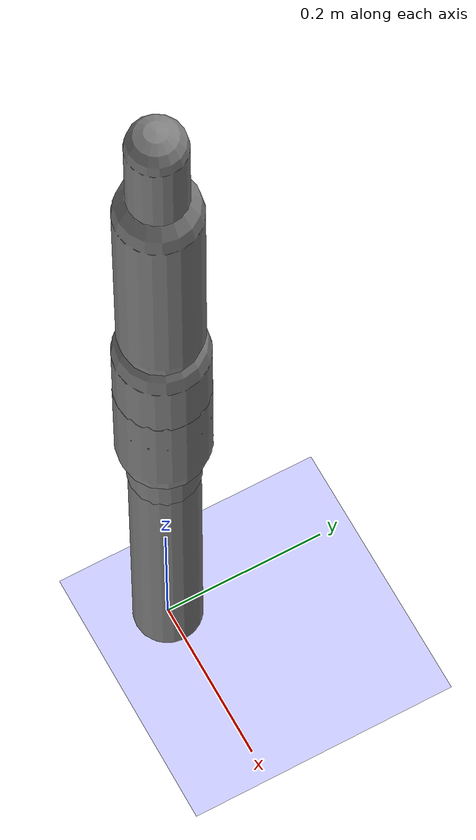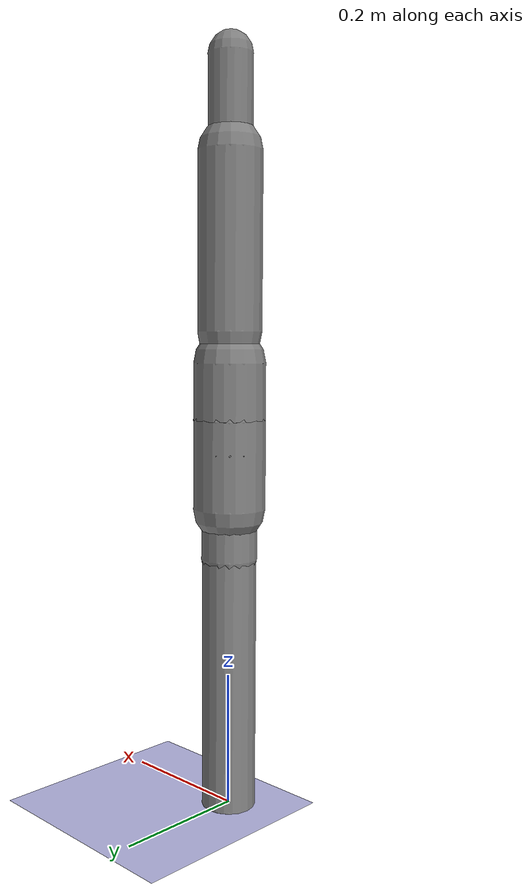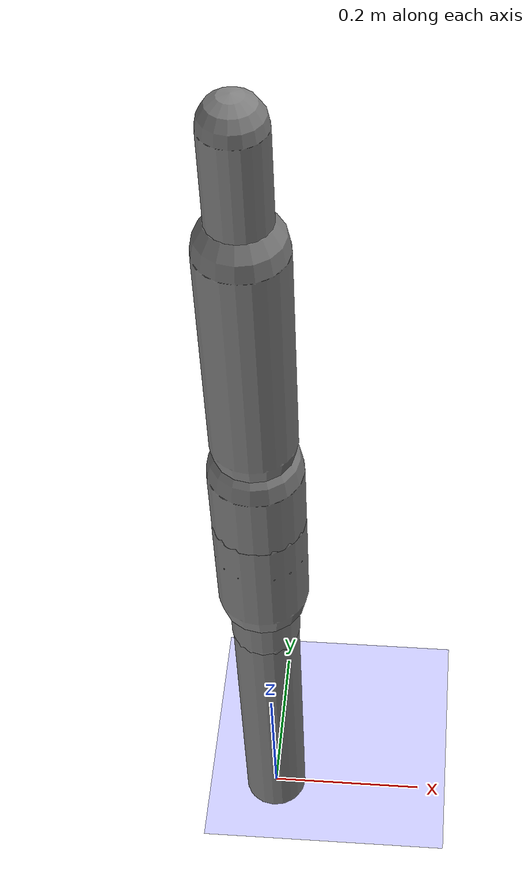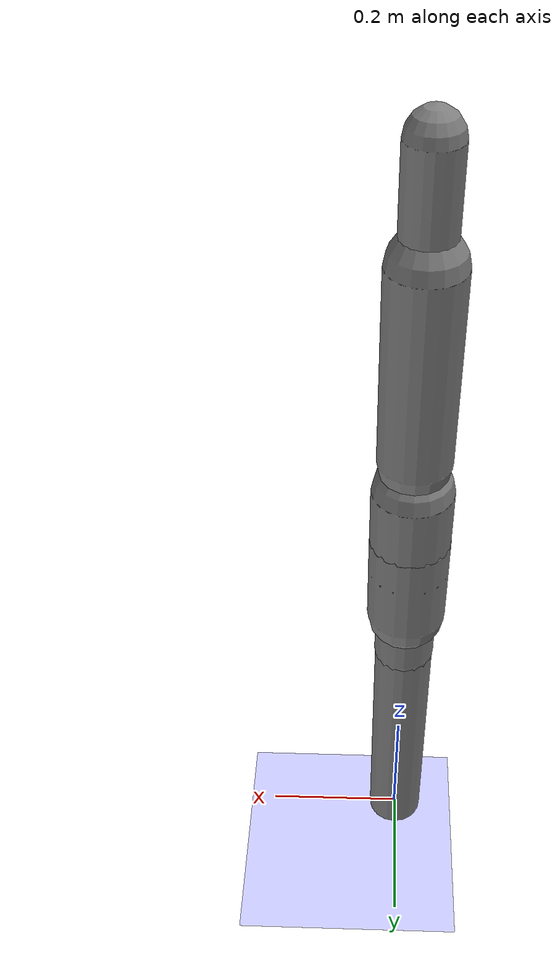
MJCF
<?xml version='1.0' encoding='UTF-8'?>
<mujoco model="robot_model">
  <worldbody>
    <light name="light" pos="0 -3 10" dir="0 0.5 -1" diffuse=".8 .8 .8" specular="0.1 0.1 0.1"/>
    <geom name="floor" type="plane" size="10.0 10.0 0.1" pos="0 0 0" rgba="0.8 0.8 1 1" contype="2" conaffinity="1"/>
    <body name="limb0" pos="0 0 0">
      <geom type="capsule" fromto="0 0 0 0 0 0.48450893437579834" size="0.04072697552709942" density="1046.9075004712781" contype="1" conaffinity="2"/>
      <site type="sphere" size="0.01" name="limb0_site0" pos="0 0 0.2795169073995135"/>
      <site type="sphere" size="0.01" name="limb0_site1" pos="0 0 0.45626504591091505"/>
      <freejoint name="limb0_root"/>
      <body name="limb1" pos="0 0 0.2795169073995135">
        <geom type="capsule" fromto="0 0 0 0 0 0.2639757366326131" size="0.03303782304059255" density="616.6153958948047" contype="1" conaffinity="2"/>
        <site type="sphere" size="0.01" name="limb1_site0" pos="0 0 0.16469519644951955"/>
        <site type="sphere" size="0.01" name="limb1_site1" pos="0 0 0.10105994540977413"/>
        <site type="sphere" size="0.01" name="limb1_site2" pos="0 0 0.22399130455694416"/>
        <body name="limb2" pos="0 0 0.16469519644951955">
          <geom type="capsule" fromto="0 0 0 0 0 0.22354186753596794" size="0.040072789194709066" density="671.9681923039791" contype="1" conaffinity="2"/>
          <site type="sphere" size="0.01" name="limb2_site0" pos="0 0 0.09613948125786533"/>
          <body name="limb3" pos="0 0 0.09613948125786533">
            <geom type="capsule" fromto="0 0 0 0 0 0.1320734913801986" size="0.05340957392047939" density="1133.4821049602715" contype="1" conaffinity="2"/>
            <joint name="joint_limb2_limb3_0" type="hinge" axis="0 1 0" range="-69.44632972357735 69.44632972357735" damping="5.0"/>
          </body>
          <joint name="joint_limb1_limb2_0" type="hinge" axis="0 1 0" range="-79.19027832141104 79.19027832141104" damping="5.0"/>
        </body>
        <body name="limb4" pos="0 0 0.10105994540977413">
          <geom type="capsule" fromto="0 0 0 0 0 0.3449366956007403" size="0.04182995516077146" density="888.638751137447" contype="1" conaffinity="2"/>
          <site type="sphere" size="0.01" name="limb4_site0" pos="0 0 0.34476469369601037"/>
          <site type="sphere" size="0.01" name="limb4_site1" pos="0 0 0.197693734804722"/>
          <body name="limb5" pos="0 0 0.34476469369601037">
            <geom type="capsule" fromto="0 0 0 0 0 0.38689637571819735" size="0.03296585503229504" density="787.6117064878987" contype="1" conaffinity="2"/>
            <joint name="joint_limb4_limb5_0" type="hinge" axis="0 1 0" range="-97.60316524447805 97.60316524447805" damping="5.0"/>
          </body>
          <body name="limb6" pos="0 0 0.197693734804722">
            <geom type="capsule" fromto="0 0 0 0 0 0.1209611644315948" size="0.020475413601167402" density="418.52899181852035" contype="1" conaffinity="2"/>
            <joint name="joint_limb4_limb6_0" type="hinge" axis="0 1 0" range="-98.74425114599552 98.74425114599552" damping="5.0"/>
          </body>
          <joint name="joint_limb1_limb4_0" type="hinge" axis="0 1 0" range="-81.36051586401729 81.36051586401729" damping="5.0"/>
        </body>
        <body name="limb7" pos="0 0 0.22399130455694416">
          <geom type="capsule" fromto="0 0 0 0 0 0.4886525017141072" size="0.02730849030649112" density="1118.1587480940386" contype="1" conaffinity="2"/>
          <site type="sphere" size="0.01" name="limb7_site0" pos="0 0 0.2148602362279738"/>
          <site type="sphere" size="0.01" name="limb7_site1" pos="0 0 0.2502629485534305"/>
          <body name="limb8" pos="0 0 0.2148602362279738">
            <geom type="capsule" fromto="0 0 0 0 0 0.2587901804528069" size="0.047493742864135685" density="1200.0" contype="1" conaffinity="2"/>
            <joint name="joint_limb7_limb8_0" type="hinge" axis="0 0 1" range="-90.68447688642209 90.68447688642209" damping="5.0"/>
          </body>
          <body name="limb9" pos="0 0 0.2502629485534305">
            <geom type="capsule" fromto="0 0 0 0 0 0.1" size="0.02258212688075009" density="794.8277341934504" contype="1" conaffinity="2"/>
            <joint name="joint_limb7_limb9_0" type="hinge" axis="1 0 0" range="-42.15190616583611 42.15190616583611" damping="5.0"/>
          </body>
          <joint name="joint_limb1_limb7_0" type="hinge" axis="0 1 0" range="-80.38696577407528 80.38696577407528" damping="5.0"/>
        </body>
        <joint name="joint_limb0_limb1_0" type="hinge" axis="0 1 0" range="-72.78200781124774 72.78200781124774" damping="5.0"/>
      </body>
      <body name="limb10" pos="0 0 0.45626504591091505">
        <geom type="capsule" fromto="0 0 0 0 0 0.13252947652278277" size="0.05372058858359962" density="1100.1826029615775" contype="1" conaffinity="2"/>
        <joint name="joint_limb0_limb10_0" type="hinge" axis="0 1 0" range="-46.186401585393725 46.186401585393725" damping="5.0"/>
      </body>
    </body>
  </worldbody>
  <actuator>
    <position name="position_actuator_joint_limb0_limb1_0" joint="joint_limb0_limb1_0" gear="1.0330237717590445" inheritrange="1" kp="10.0"/>
    <position name="position_actuator_joint_limb1_limb2_0" joint="joint_limb1_limb2_0" gear="1.0104857860709995" inheritrange="1" kp="10.0"/>
    <position name="position_actuator_joint_limb2_limb3_0" joint="joint_limb2_limb3_0" gear="0.9276080822771746" inheritrange="1" kp="10.0"/>
    <position name="position_actuator_joint_limb1_limb4_0" joint="joint_limb1_limb4_0" gear="2.0" inheritrange="1" kp="10.0"/>
    <position name="position_actuator_joint_limb4_limb5_0" joint="joint_limb4_limb5_0" gear="1.7459471619076385" inheritrange="1" kp="10.0"/>
    <position name="position_actuator_joint_limb4_limb6_0" joint="joint_limb4_limb6_0" gear="0.6053780887485001" inheritrange="1" kp="10.0"/>
    <position name="position_actuator_joint_limb1_limb7_0" joint="joint_limb1_limb7_0" gear="1.272740550353963" inheritrange="1" kp="10.0"/>
    <position name="position_actuator_joint_limb7_limb8_0" joint="joint_limb7_limb8_0" gear="1.2021518308108163" inheritrange="1" kp="10.0"/>
    <position name="position_actuator_joint_limb7_limb9_0" joint="joint_limb7_limb9_0" gear="1.5515760021784972" inheritrange="1" kp="10.0"/>
    <position name="position_actuator_joint_limb0_limb10_0" joint="joint_limb0_limb10_0" gear="0.5181521235082891" inheritrange="1" kp="10.0"/>
  </actuator>
</mujoco>
